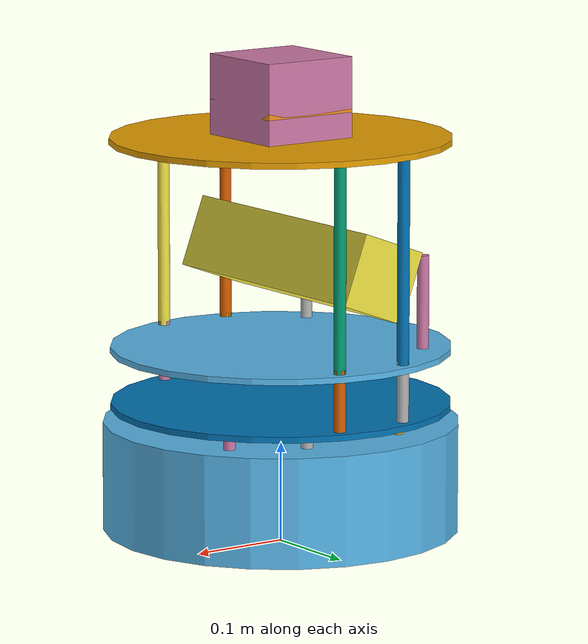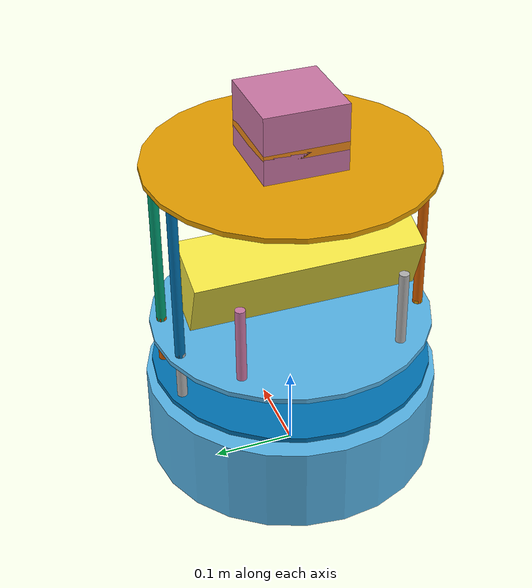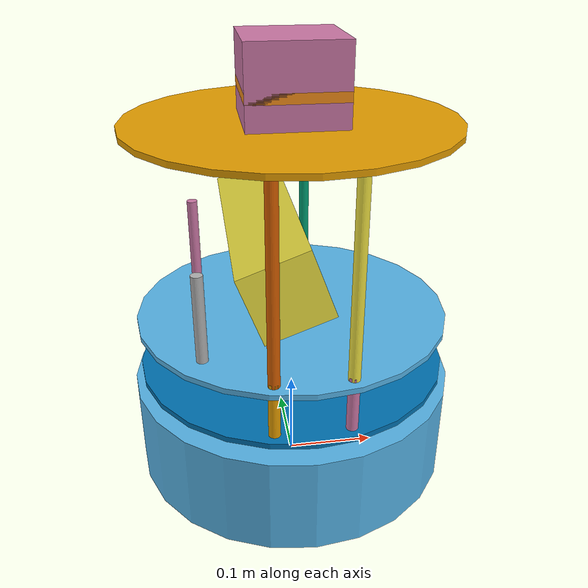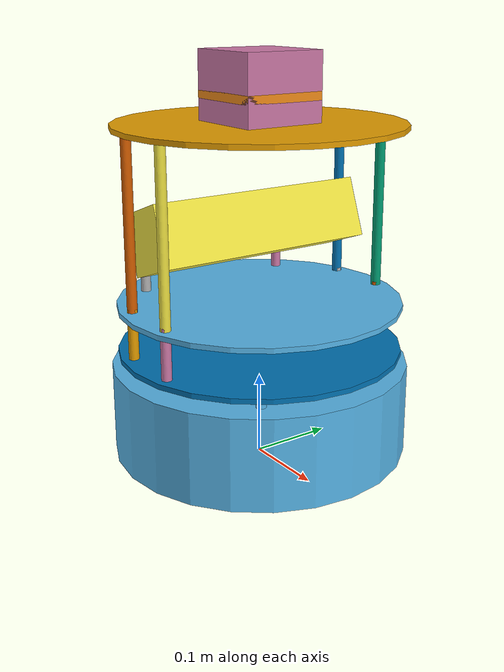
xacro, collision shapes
<?xml version="1.0"?>
<!--
    - Base      : create
    - Stacks    : circles
    - 3d Sensor : kinect
-->
<robot name="scarab" xmlns:xacro="http://ros.org/wiki/xacro">

  <xacro:arg name="tf_prefix" default="scarab"/>
  <xacro:arg name="camera"    default="true"/>
  <xacro:arg name="hokuyo"    default="true"/>
  <xacro:arg name="gazebo_color" default="Gazebo/Orange"/>

  <xacro:include filename="$(find rotors_scarab_description)/urdf/common_properties.urdf.xacro"/>
  <xacro:include filename="$(find rotors_scarab_description)/urdf/turtlebot_properties.urdf.xacro"/>
  <xacro:include filename="$(find rotors_scarab_description)/urdf/kobuki.urdf.xacro" />
  <xacro:include filename="$(find rotors_scarab_description)/urdf/hexagons.urdf.xacro"/>

  <!-- 3D Sensors -->
  <xacro:include filename="$(find rotors_scarab_description)/urdf/sensors/kinect.urdf.xacro"/>
  <xacro:include filename="$(find rotors_scarab_description)/urdf/sensors/asus_xtion_pro.urdf.xacro"/>

  <xacro:kobuki/>
  <xacro:stack_hexagons parent="$(arg tf_prefix)/base_link" prefix="$(arg tf_prefix)"/>
  <xacro:if value="$(arg camera)">
    <xacro:sensor_kinect parent="$(arg tf_prefix)/base_link" prefix="$(arg tf_prefix)"/>
  </xacro:if>
  <xacro:if value="$(arg hokuyo)">
    <xacro:include filename="$(find rotors_scarab_description)/urdf/sensors/hokuyo.gazebo" />
  </xacro:if>

  <!-- Add a small colored patch on the top plate instead of tinting the whole robot. -->
  <joint name="$(arg tf_prefix)/color_patch_joint" type="fixed">
    <origin xyz="0.0 0.0 0.43" rpy="0 0 0"/>
    <parent link="$(arg tf_prefix)/base_link"/>
    <child link="$(arg tf_prefix)/color_patch_link"/>
  </joint>
  <link name="$(arg tf_prefix)/color_patch_link">
    <visual>
      <origin xyz="0 0 0" rpy="0 0 0"/>
      <geometry>
        <box size="0.10 0.10 0.01"/>
      </geometry>
    </visual>
    <collision>
      <origin xyz="0 0 0" rpy="0 0 0"/>
      <geometry>
        <box size="0.10 0.10 0.01"/>
      </geometry>
    </collision>
    <inertial>
      <mass value="0.001"/>
      <origin xyz="0 0 0"/>
      <inertia ixx="0.0001" ixy="0.0" ixz="0.0"
               iyy="0.0001" iyz="0.0"
               izz="0.0001"/>
    </inertial>
  </link>
  <gazebo reference="$(arg tf_prefix)/color_patch_link">
    <material>$(arg gazebo_color)</material>
  </gazebo>

</robot>

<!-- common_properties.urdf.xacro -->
<!--
  Various useful properties such as constants and materials
 -->
<robot name="xacro_properties" xmlns:xacro="http://ros.org/wiki/xacro">
  <xacro:property name="M_PI" value="3.1415926535897931" />
  <xacro:property name="material_white">
    <material name="white">
      <color rgba="1 1 1 1"/>
    </material>
  </xacro:property>
  <xacro:property name="material_grey">
    <material name="grey">
      <color rgba="0.5 0.5 0.5 1"/>
    </material>
  </xacro:property>
  <xacro:property name="material_light_grey">
    <material name="light_grey">
      <color rgba="0.6 0.6 0.6 1"/>
    </material>
  </xacro:property>
  <xacro:property name="material_dark_grey">
    <material name="dark_grey">
      <color rgba="0.3 0.3 0.3 1"/>
    </material>
  </xacro:property>
  <xacro:property name="material_black">
    <material name="black">
      <color rgba="0.1 0.1 0.1 1"/>
    </material>
  </xacro:property>
  <xacro:property name="material_red">
    <material name="red">
      <color rgba="1 0 0 1"/>
    </material>
  </xacro:property>
  <xacro:property name="material_green">
    <material name="green">
      <color rgba="0.0 0.8 0.0 1"/>
    </material>
  </xacro:property>
  <xacro:property name="material_blue">
    <material name="blue">
      <color rgba="0.0 0.0 1.0 1"/>
    </material>
  </xacro:property>
  <xacro:property name="material_grey_blue">
    <material name="grey_blue">
      <color rgba="0.4 0.4 1.0 1"/>
    </material>
  </xacro:property>
  <xacro:property name="material_orange">
    <material name="orange">
      <color rgba="1.0 0.7 0.0 1"/>
    </material>
  </xacro:property>
</robot>

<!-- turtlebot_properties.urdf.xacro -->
<robot name="turtlebot_properties" xmlns:xacro="http://ros.org/wiki/xacro">
  <!--
    These properties must be observed by any machine
    that wants to be defined as a turtlebot. Refer
    to the REP for more details.

    http://www.ros.org/reps/rep-0119.html
   -->

  <xacro:property name="cam_px" value="-0.0" />
  <xacro:property name="cam_py" value="-0.0" />
  <xacro:property name="cam_pz" value="0.3" />
  <xacro:property name="cam_or" value="0" />
  <xacro:property name="cam_op" value="-0.357" />
  <xacro:property name="cam_oy" value="0" />
</robot>

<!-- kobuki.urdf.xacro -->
<!--
This is not a standalone urdf for kobuki. It simply defines the scarab tag that
can be incorporated by other urdf files (e.g. turtlebot).
-->
<robot name="kobuki" xmlns:xacro="http://ros.org/wiki/xacro">
  <xacro:include filename="$(find rotors_scarab_description)/urdf/common_properties.urdf.xacro"/>
  <xacro:include filename="$(find rotors_scarab_description)/urdf/kobuki_gazebo.urdf.xacro"/>

  <!-- Kobuki -->
  <xacro:macro name="kobuki">
    <link name="$(arg tf_prefix)/base_footprint"/>
    <joint name="$(arg tf_prefix)/base_joint" type="fixed">
      <origin xyz="0 0 0.0102" rpy="0 0 0" />
      <parent link="$(arg tf_prefix)/base_footprint"/>
      <child link="$(arg tf_prefix)/base_link" />
    </joint>
    <link name="$(arg tf_prefix)/base_link">
      <visual>
        <geometry>
          <!-- new mesh -->
          <mesh filename="package://rotors_scarab_description/meshes/kobuki/main_body.dae" />
        </geometry>
        <origin xyz="0.001 0 0.05199" rpy="0 0 0"/>
      </visual>
      <collision>
        <geometry>
          <cylinder length="0.10938" radius="0.178"/>
        </geometry>
        <origin xyz="0.0 0 0.05949" rpy="0 0 0"/>
      </collision>
      <inertial>
        <!-- COM experimentally determined -->
        <origin xyz="0.01 0 0"/>
        <mass value="0.0001"/>
        <inertia ixx="0.000001" ixy="0.0" ixz="0.0"
                 iyy="0.000001" iyz="0.0"
                 izz="0.000001" />
      </inertial>
    </link>

    <joint name="$(arg tf_prefix)/wheel_left_joint" type="continuous">
      <parent link="$(arg tf_prefix)/base_link"/>
      <child link="$(arg tf_prefix)/wheel_left_link"/>
      <origin xyz="0.00 ${0.23/2} 0.0250" rpy="${-M_PI/2} 0 0"/>
      <axis xyz="0 0 1"/>
    </joint>
    <link name="$(arg tf_prefix)/wheel_left_link">
      <visual>
        <geometry>
          <mesh filename="package://rotors_scarab_description/meshes/kobuki/wheel.dae"/>
        </geometry>
        <origin xyz="0 0 0" rpy="0 0 0"/>
      </visual>
      <collision>
        <geometry>
          <cylinder length="0.0206" radius="0.0352"/>
        </geometry>
        <origin rpy="0 0 0" xyz="0 0 0"/>
      </collision>
      <inertial>
        <mass value="0.0001" />
        <origin xyz="0 0 0" />
        <inertia ixx="0.000001" ixy="0.0" ixz="0.0"
                 iyy="0.000001" iyz="0.0"
                 izz="0.000001" />
      </inertial>
    </link>

    <joint name="$(arg tf_prefix)/wheel_right_joint" type="continuous">
      <parent link="$(arg tf_prefix)/base_link"/>
      <child link="$(arg tf_prefix)/wheel_right_link"/>
      <origin xyz="0.00 -${0.23/2} 0.0250" rpy="${-M_PI/2} 0 0"/>
      <axis xyz="0 0 1"/>
    </joint>
    <link name="$(arg tf_prefix)/wheel_right_link">
      <visual>
        <geometry>
          <mesh filename="package://rotors_scarab_description/meshes/kobuki/wheel.dae"/>
        </geometry>
        <origin xyz="0 0 0" rpy="0 0 0"/>
      </visual>
      <collision>
        <geometry>
          <cylinder length="0.0206" radius="0.0350"/>
        </geometry>
        <origin rpy="0 0 0" xyz="0 0 0"/>
      </collision>
      <inertial>
        <mass value="0.0001" />
        <origin xyz="0 0 0" />
        <inertia ixx="0.000001" ixy="0.0" ixz="0.0"
                 iyy="0.000001" iyz="0.0"
                 izz="0.000001" />
      </inertial>
    </link>

    <joint name="$(arg tf_prefix)/caster_front_joint" type="fixed">
      <parent link="$(arg tf_prefix)/base_link"/>
      <child link="$(arg tf_prefix)/caster_front_link"/>
      <origin xyz="0.115 0.0 0.007" rpy="${-M_PI/2} 0 0"/>
    </joint>
    <link name="$(arg tf_prefix)/caster_front_link">
      <collision>
        <geometry>
          <cylinder length="0.0176" radius="0.017"/>
        </geometry>
        <origin rpy="0 0 0" xyz="0 0 0"/>
      </collision>
      <inertial>
        <mass value="0.0001" />
        <origin xyz="0 0 0" />
        <inertia ixx="0.000001" ixy="0.0" ixz="0.0"
                 iyy="0.000001" iyz="0.0"
                 izz="0.000001" />
      </inertial>
    </link>

    <joint name="$(arg tf_prefix)/caster_back_joint" type="fixed">
      <parent link="$(arg tf_prefix)/base_link"/>
      <child link="$(arg tf_prefix)/caster_back_link"/>
      <origin xyz="-0.135 0.0 0.009" rpy="${-M_PI/2} 0 0"/>
    </joint>
    <link name="$(arg tf_prefix)/caster_back_link">
      <collision>
        <geometry>
          <cylinder length="0.0176" radius="0.017"/>
        </geometry>
        <origin rpy="0 0 0" xyz="0 0 0"/>
      </collision>
      <inertial>
        <mass value="0.0001" />
        <origin xyz="0 0 0" />
        <inertia ixx="0.000001" ixy="0.0" ixz="0.0"
                 iyy="0.000001" iyz="0.0"
                 izz="0.000001" />
      </inertial>
    </link>

    <!-- Kobuki Gazebo simulation details -->
    <xacro:kobuki_sim/>

  </xacro:macro>
</robot>

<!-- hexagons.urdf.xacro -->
<!--
  Hexagon stacks
 -->
<robot name="stack_hexagons" xmlns:xacro="http://ros.org/wiki/xacro">
  <xacro:include filename="$(find rotors_scarab_description)/urdf/common_properties.urdf.xacro"/>

  <!-- Xacro properties -->
  <xacro:property name="M_SCALE" value="0.001"/>

  <!-- Xacro macros -->
  <!-- Pole macros -->
  <xacro:macro name="stack_bottom_pole" params="parent prefix number x_loc y_loc z_loc">
    <joint name="${prefix}/pole_bottom_${number}_joint" type="fixed">
      <origin xyz="${x_loc} ${y_loc} ${z_loc}" rpy="0 0 0"/>
      <parent link="${parent}"/>
      <child link="${prefix}/pole_bottom_${number}_link"/>
    </joint>
    <link name="${prefix}/pole_bottom_${number}_link">
      <visual>
        <origin xyz="0 0 0" rpy="0 0 0"/>
        <geometry>
          <mesh filename="package://rotors_scarab_description/meshes/hexagons/pole_bottom.dae"/>
        </geometry>
      </visual>
      <collision>
        <origin xyz="0 0 0" rpy="0 0 0"/>
        <geometry>
          <cylinder length="0.0492" radius=".006"/>
        </geometry>
      </collision>
      <inertial>
        <mass value="0.001"/>
        <origin xyz="0 0 0" rpy="0 0 0"/>
        <inertia ixx="0.0001" ixy="0.0" ixz="0.0"
                 iyy="0.0001" iyz="0.0"
                 izz="0.0001"/>
      </inertial>
    </link>
  </xacro:macro>

  <xacro:macro name="stack_middle_pole" params="parent prefix number x_loc y_loc z_loc">
    <joint name="${prefix}/pole_middle_${number}_joint" type="fixed">
      <origin xyz="${x_loc} ${y_loc} ${z_loc}" rpy="0 0 0" />
      <parent link="${parent}"/>
      <child link="${prefix}/pole_middle_${number}_link"/>
    </joint>
    <link name="${prefix}/pole_middle_${number}_link">
      <visual>
        <origin xyz="0 0 0" rpy="0 ${M_PI} 0"/>
        <geometry>
          <mesh filename="package://rotors_scarab_description/meshes/hexagons/pole_middle.dae"/>
        </geometry>
      </visual>
      <collision>
        <origin xyz="0 0 0" rpy="0 0 0"/>
        <geometry>
          <cylinder length="0.0608" radius=".006"/>
        </geometry>
      </collision>
      <inertial>
        <mass value="0.001"/>
        <origin xyz="0 0 0"/>
        <inertia ixx="0.0001" ixy="0.0" ixz="0.0"
                 iyy="0.0001" iyz="0.0"
                 izz="0.0001"/>
      </inertial>
    </link>
  </xacro:macro>

  <xacro:macro name="stack_top_pole" params="parent prefix number x_loc y_loc z_loc">
    <joint name="${prefix}/pole_top_${number}_joint" type="fixed">
      <origin xyz="${x_loc} ${y_loc} ${z_loc}" rpy="0 0 0"/>
      <parent link="${parent}"/>
      <child link="${prefix}/pole_top_${number}_link"/>
    </joint>
    <link name="${prefix}/pole_top_${number}_link">
      <visual>
        <origin xyz=" 0 0 0" rpy="0 0 0"/>
        <geometry>
          <mesh filename="package://rotors_scarab_description/meshes/hexagons/pole_top.dae"/>
        </geometry>
      </visual>
      <collision>
        <origin xyz="0 0 0" rpy="0 0 0"/>
        <geometry>
          <cylinder length="0.2032" radius=".006"/>
        </geometry>
      </collision>
      <inertial>
        <mass value="0.001"/>
        <origin xyz="0 0 0"/>
        <inertia ixx="0.0001" ixy="0.0" ixz="0.0"
                 iyy="0.0001" iyz="0.0"
                 izz="0.0001"/>
      </inertial>
    </link>
  </xacro:macro>

  <xacro:macro name="stack_3d_sensor_pole" params="parent prefix number x_loc y_loc z_loc">
    <joint name="${prefix}/pole_kinect_${number}_joint" type="fixed">
      <origin xyz="${x_loc} ${y_loc} ${z_loc}" rpy="0 0 0"/>
      <parent link="${parent}"/>
      <child link="${prefix}/pole_kinect_${number}_link"/>
    </joint>
    <link name="${prefix}/pole_kinect_${number}_link">
      <visual>
        <origin xyz="0 0 0" rpy="0 0 0"/>
        <geometry>
          <mesh filename="package://rotors_scarab_description/meshes/hexagons/pole_kinect.dae"/>
        </geometry>
      </visual>
      <collision>
        <origin xyz="0 0 0" rpy="0 0 0"/>
        <geometry>
          <cylinder length="0.0936" radius="0.006"/>
        </geometry>
      </collision>
      <inertial>
        <mass value="0.001"/>
        <origin xyz="0 0 0"/>
        <inertia ixx="0.0001" ixy="0.0" ixz="0.0"
                 iyy="0.0001" iyz="0.0"
                 izz="0.0001"/>
      </inertial>
    </link>
  </xacro:macro>

  <xacro:macro name="stack_hexagons" params="parent prefix">
    <xacro:stack_bottom_pole parent="${parent}" prefix="${prefix}" number="0" x_loc= "0.120" y_loc= "0.082" z_loc="0.1028"/>
    <xacro:stack_bottom_pole parent="${parent}" prefix="${prefix}" number="1" x_loc= "0.055" y_loc= "0.120" z_loc="0.1028"/>
    <xacro:stack_bottom_pole parent="${parent}" prefix="${prefix}" number="2" x_loc="-0.055" y_loc= "0.120" z_loc="0.1028"/>
    <xacro:stack_bottom_pole parent="${parent}" prefix="${prefix}" number="3" x_loc= "0.120" y_loc="-0.082" z_loc="0.1028"/>
    <xacro:stack_bottom_pole parent="${parent}" prefix="${prefix}" number="4" x_loc= "0.055" y_loc="-0.120" z_loc="0.1028"/>
    <xacro:stack_bottom_pole parent="${parent}" prefix="${prefix}" number="5" x_loc="-0.055" y_loc="-0.120" z_loc="0.1028"/>

    <joint name="${prefix}/plate_bottom_joint" type="fixed">
      <origin xyz="0.02364 0.0 0.1306" rpy="0 0 0"/>
      <parent link="${parent}"/>
      <child link="${prefix}/plate_bottom_link"/>
    </joint>
    <link name="${prefix}/plate_bottom_link">
      <visual>
        <origin xyz="0 0 0" rpy="0 0 0"/>
        <geometry>
          <mesh filename="package://rotors_scarab_description/meshes/hexagons/plate_bottom.dae"/>
        </geometry>
      </visual>
      <collision>
        <origin xyz="-0.02364 0 0" rpy="0 0 0"/>
        <geometry>
          <cylinder length="0.006" radius="0.170"/>
        </geometry>
      </collision>
      <inertial>
        <mass value="0.01" />
        <origin xyz="0 0 0" />
        <inertia ixx="0.01" ixy="0.0" ixz="0.0"
                 iyy="0.01" iyz="0.0"
                 izz="0.01" />
      </inertial>
    </link>

    <xacro:stack_middle_pole parent="${parent}" prefix="${prefix}" number="0" x_loc= "0.0381" y_loc= "0.1505" z_loc="0.1640"/>
    <xacro:stack_middle_pole parent="${parent}" prefix="${prefix}" number="1" x_loc= "0.0381" y_loc="-0.1505" z_loc="0.1640"/>
    <xacro:stack_middle_pole parent="${parent}" prefix="${prefix}" number="2" x_loc="-0.0381" y_loc= "0.1505" z_loc="0.1640"/>
    <xacro:stack_middle_pole parent="${parent}" prefix="${prefix}" number="3" x_loc="-0.0381" y_loc="-0.1505" z_loc="0.1640"/>

    <joint name="${prefix}/plate_middle_joint" type="fixed">
      <origin xyz="-0.01364 0.0 0.1874" rpy="0 0 0"/>
      <parent link="${parent}"/>
      <child link="${prefix}/plate_middle_link"/>
    </joint>
    <link name="${prefix}/plate_middle_link">
      <visual>
        <origin xyz="0 0 0" rpy="0 0 0"/>
        <geometry>
          <mesh filename="package://rotors_scarab_description/meshes/hexagons/plate_middle.dae"/>
        </geometry>
      </visual>
      <collision>
        <origin xyz="0.01364 0.0 0.0" rpy="0 0 0"/>
        <geometry>
          <cylinder length="0.006" radius="0.170"/>
        </geometry>
      </collision>
      <inertial>
        <mass value="0.01" />
        <origin xyz="0 0 0" />
        <inertia ixx="0.01" ixy="0.0" ixz="0.0"
                 iyy="0.01" iyz="0.0"
                 izz="0.01" />
      </inertial>
    </link>

    <xacro:stack_top_pole parent="${parent}" prefix="${prefix}" number="0" x_loc= "0.0381" y_loc= "0.1505" z_loc="0.2920"/>
    <xacro:stack_top_pole parent="${parent}" prefix="${prefix}" number="1" x_loc= "0.0381" y_loc="-0.1505" z_loc="0.2920"/>
    <xacro:stack_top_pole parent="${parent}" prefix="${prefix}" number="2" x_loc="-0.0381" y_loc= "0.1505" z_loc="0.2920"/>
    <xacro:stack_top_pole parent="${parent}" prefix="${prefix}" number="3" x_loc="-0.0381" y_loc="-0.1505" z_loc="0.2920"/>
    <xacro:stack_3d_sensor_pole parent="${parent}" prefix="${prefix}" number="0" x_loc="-0.1024" y_loc= "0.098" z_loc="0.2372"/>
    <xacro:stack_3d_sensor_pole parent="${parent}" prefix="${prefix}" number="1" x_loc="-0.1024" y_loc="-0.098" z_loc="0.2372"/>

    <joint name="${prefix}/plate_top_joint" type="fixed">
      <origin xyz="-0.01364 0.0  0.3966" rpy="0 0 0"/>
      <parent link="${parent}"/>
      <child link="${prefix}/plate_top_link"/>
    </joint>
    <link name="${prefix}/plate_top_link">
      <visual>
        <origin xyz="0 0 0" rpy="0 0 0"/>
        <geometry>
          <mesh filename="package://rotors_scarab_description/meshes/hexagons/plate_top.dae"/>
        </geometry>
      </visual>
      <collision>
        <origin xyz="0.01364 0 0" rpy="0 0 0"/>
        <geometry>
          <cylinder length="0.006" radius="0.170"/>
        </geometry>
      </collision>
      <inertial>
        <mass value="0.01"/>
        <origin xyz="0 0 0"/>
        <inertia ixx="0.01" ixy="0.0" ixz="0.0"
                 iyy="0.01" iyz="0.0"
                 izz="0.01" />
      </inertial>
    </link>
  </xacro:macro>
</robot>

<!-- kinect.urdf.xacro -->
<robot name="sensor_kinect" xmlns:xacro="http://ros.org/wiki/xacro">
  <xacro:include filename="$(find rotors_scarab_description)/urdf/turtlebot_gazebo.urdf.xacro"/>
  <xacro:include filename="$(find rotors_scarab_description)/urdf/turtlebot_properties.urdf.xacro"/>

  <!-- Parameterised in part by the values in turtlebot_properties.urdf.xacro -->
  <xacro:macro name="sensor_kinect" params="parent prefix">
    <joint name="${prefix}/camera_rgb_joint" type="fixed">
      <origin xyz="${cam_px} ${cam_py} ${cam_pz}" rpy="${cam_or} ${cam_op} ${cam_oy}"/>
      <parent link="${parent}"/>
      <child link="${prefix}/camera_rgb_frame" />
    </joint>
    <link name="${prefix}/camera_rgb_frame">
      <inertial>
        <mass value="0.001" />
        <origin xyz="0 0 0" />
        <inertia ixx="0.0001" ixy="0.0" ixz="0.0"
                 iyy="0.0001" iyz="0.0"
                 izz="0.0001" />
      </inertial>
    </link>
    <joint name="${prefix}/camera_rgb_optical_joint" type="fixed">
      <origin xyz="0 0 0" rpy="${-M_PI/2} 0 ${-M_PI/2}" />
      <parent link="${prefix}/camera_rgb_frame" />
      <child link="${prefix}/camera_rgb_optical_frame" />
    </joint>
    <link name="${prefix}/camera_rgb_optical_frame">
      <inertial>
        <mass value="0.001" />
        <origin xyz="0 0 0" />
        <inertia ixx="0.0001" ixy="0.0" ixz="0.0"
                 iyy="0.0001" iyz="0.0"
                 izz="0.0001" />
      </inertial>
    </link>

    <joint name="${prefix}/camera_joint" type="fixed">
      <origin xyz="-0.031 ${-cam_py} -0.016" rpy="0 0 0"/>
      <parent link="${prefix}/camera_rgb_frame"/>
      <child link="${prefix}/camera_link"/>
    </joint>
    <link name="${prefix}/camera_link">
      <visual>
        <origin xyz="0 0 0" rpy="0 0 ${M_PI/2}"/>
        <geometry>
          <mesh filename="package://rotors_scarab_description/meshes/sensors/kinect.dae"/>
        </geometry>
      </visual>
      <collision>
        <origin xyz="0.0 0.0 0.0" rpy="0 0 0"/>
        <geometry>
          <box size="0.07271 0.27794 0.073"/>
        </geometry>
      </collision>
      <inertial>
        <mass value="0.001" />
        <origin xyz="0 0 0" />
        <inertia ixx="0.0001" ixy="0.0" ixz="0.0"
                 iyy="0.0001" iyz="0.0"
                 izz="0.0001" />
      </inertial>
    </link>

    <joint name="${prefix}/camera_depth_joint" type="fixed">
      <origin xyz="0 ${2 * -cam_py} 0" rpy="0 0 0" />
      <parent link="${prefix}/camera_rgb_frame" />
      <child link="${prefix}/camera_depth_frame" />
    </joint>
    <link name="${prefix}/camera_depth_frame">
      <inertial>
        <mass value="0.001" />
        <origin xyz="0 0 0" />
        <inertia ixx="0.0001" ixy="0.0" ixz="0.0"
                 iyy="0.0001" iyz="0.0"
                 izz="0.0001" />
      </inertial>
    </link>
    <joint name="${prefix}/camera_depth_optical_joint" type="fixed">
      <origin xyz="0 0 0" rpy="${-M_PI/2} 0 ${-M_PI/2}" />
      <parent link="${prefix}/camera_depth_frame" />
      <child link="${prefix}/camera_depth_optical_frame" />
    </joint>
    <link name="${prefix}/camera_depth_optical_frame">
      <inertial>
        <mass value="0.001" />
        <origin xyz="0 0 0" />
        <inertia ixx="0.0001" ixy="0.0" ixz="0.0"
                 iyy="0.0001" iyz="0.0"
                 izz="0.0001" />
      </inertial>
    </link>

    <!-- Kinect sensor for simulation -->
    <xacro:turtlebot_sim_3dsensor/>
  </xacro:macro>
</robot>

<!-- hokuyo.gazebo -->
<robot>
  <joint name="$(arg tf_prefix)/hokuyo_joint" type="fixed">
    <axis xyz="0 1 0" />
    <origin xyz="${cam_px} ${cam_py} 0.43" rpy="0 0 0"/>
    <parent link="$(arg tf_prefix)/base_link"/>
    <child link="$(arg tf_prefix)/laser"/>
  </joint>

  <!-- Hokuyo Laser -->
  <link name="$(arg tf_prefix)/laser">
    <collision>
      <origin xyz="0 0 0" rpy="0 0 0"/>
      <geometry>
        <box size="0.1 0.1 0.1"/>
      </geometry>
    </collision>

    <visual>
      <origin xyz="0 0 0" rpy="0 0 0"/>
      <geometry>
        <mesh filename="package://rotors_scarab_description/meshes/sensors/hokuyo.dae"/>
      </geometry>
    </visual>

    <inertial>
      <mass value="1e-5" />
      <origin xyz="0 0 0" rpy="0 0 0"/>
      <inertia ixx="1e-6" ixy="0" ixz="0" iyy="1e-6" iyz="0" izz="1e-6" />
    </inertial>
  </link>

  <!-- Simulate UTM-30LX -->
  <gazebo reference="$(arg tf_prefix)/laser">
    <sensor type="ray" name="head_hokuyo_sensor">
      <pose>0 0 0 0 0 0</pose>
      <visualize>false</visualize>
      <update_rate>20</update_rate>
      <ray>
        <scan>
          <horizontal>
            <samples>1024</samples>
            <resolution>1</resolution>
            <!-- +/- 135 degrees -->
            <min_angle>-2.356194</min_angle>
            <max_angle>2.356194</max_angle>
          </horizontal>
        </scan>
        <range>
          <min>0.10</min>
          <max>30.0</max>
          <resolution>0.01</resolution>
        </range>
        <noise>
          <type>gaussian</type>
          <mean>0.0</mean>
          <stddev>0.001</stddev>
        </noise>
      </ray>
      <plugin name="gazebo_ros_head_hokuyo_controller" filename="libgazebo_ros_laser.so">
        <topicName>scan</topicName>
        <frameName>$(arg tf_prefix)/laser</frameName>
      </plugin>
    </sensor>
  </gazebo>
</robot>
